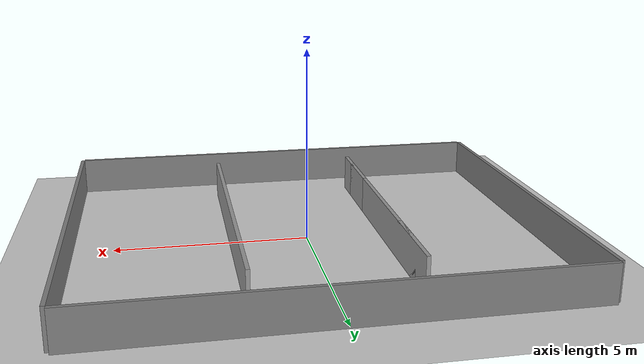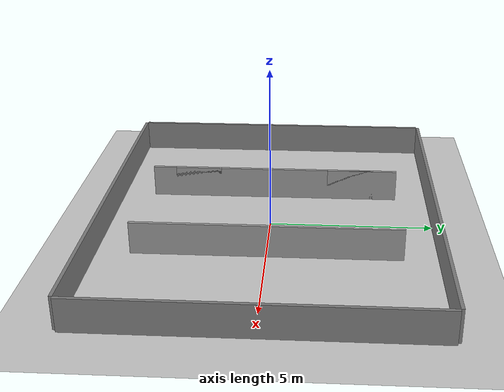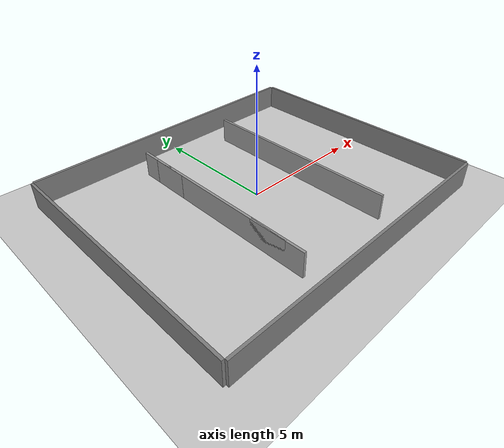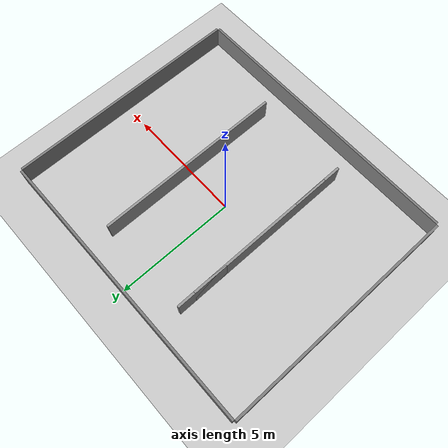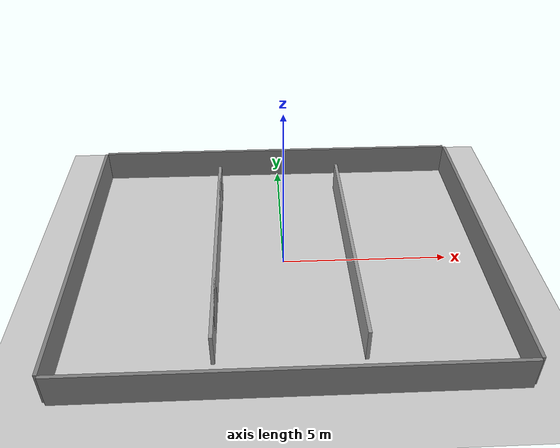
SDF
<sdf version="1.6">
 <world name="test_2d_base">
  <gravity>0 0 -9.81</gravity>
  <magnetic_field>0 0 -5e-05</magnetic_field>
  <atmosphere type="adiabatic"/>
  <physics type="ode">
   <real_time_update_rate>1000</real_time_update_rate>
   <real_time_factor>1</real_time_factor>
   <ode>
    <solver><type>quick</type><iters>50</iters><precon>1</precon></solver>
    <constraints>
     <cfm>0.00001</cfm>
     <erp>0.2</erp>
     <contact_max_correcting_vel>100</contact_max_correcting_vel>
     <contact_surface_layer>0.001</contact_surface_layer>
    </constraints>
   </ode>
  </physics>
  <scene><ambient>0.4 0.4 0.4 1</ambient><background>0.7 0.7 0.7 1</background><shadows>true</shadows></scene>
  <light name="sun" type="directional">
   <diffuse>0.8 0.8 0.8 1</diffuse>
   <specular>0.2 0.2 0.2 1</specular>
   <direction>0.3 0.2 -1</direction>
  </light>
  <include><uri>model://ground_plane</uri></include>
  <model name="wall_north">
   <static>true</static>
   <pose>0 5.05 0.5 0 0 0</pose>
   <link name="body">
    <collision name="col"><geometry><box><size>12 0.1 1</size></box></geometry></collision>
    <visual name="vis">
     <geometry><box><size>12 0.1 1</size></box></geometry>
     <material><ambient>0.5 0.5 0.5 1</ambient></material>
    </visual>
   </link>
  </model>
  <model name="wall_south">
   <static>true</static>
   <pose>0 -5.05 0.5 0 0 0</pose>
   <link name="body">
    <collision name="col"><geometry><box><size>12 0.1 1</size></box></geometry></collision>
    <visual name="vis">
     <geometry><box><size>12 0.1 1</size></box></geometry>
     <material><ambient>0.5 0.5 0.5 1</ambient></material>
    </visual>
   </link>
  </model>
  <model name="wall_east">
   <static>true</static>
   <pose>6.05 0 0.5 0 0 1.5707963</pose>
   <link name="body">
    <collision name="col"><geometry><box><size>10 0.1 1</size></box></geometry></collision>
    <visual name="vis">
     <geometry><box><size>10 0.1 1</size></box></geometry>
     <material><ambient>0.5 0.5 0.5 1</ambient></material>
    </visual>
   </link>
  </model>
  <model name="wall_west">
   <static>true</static>
   <pose>-6.05 0 0.5 0 0 1.5707963</pose>
   <link name="body">
    <collision name="col"><geometry><box><size>10 0.1 1</size></box></geometry></collision>
    <visual name="vis">
     <geometry><box><size>10 0.1 1</size></box></geometry>
     <material><ambient>0.5 0.5 0.5 1</ambient></material>
    </visual>
   </link>
  </model>
  <model name="room_divider_1">
   <static>true</static>
   <pose>-2 0 0.5 0 0 0</pose>
   <link name="body">
    <collision name="col"><geometry><box><size>0.1 8 1</size></box></geometry></collision>
    <visual name="vis">
     <geometry><box><size>0.1 8 1</size></box></geometry>
     <material><ambient>0.6 0.6 0.6 1</ambient></material>
    </visual>
   </link>
  </model>
  <model name="room_divider_2">
   <static>true</static>
   <pose>2 0 0.5 0 0 0</pose>
   <link name="body">
    <collision name="col"><geometry><box><size>0.1 8 1</size></box></geometry></collision>
    <visual name="vis">
     <geometry><box><size>0.1 8 1</size></box></geometry>
     <material><ambient>0.6 0.6 0.6 1</ambient></material>
    </visual>
   </link>
  </model>
  <model name="doorway_1_left">
   <static>true</static>
   <pose>-2 2.5 0.5 0 0 0</pose>
   <link name="body">
    <collision name="col"><geometry><box><size>0.1 1.5 1</size></box></geometry></collision>
    <visual name="vis">
     <geometry><box><size>0.1 1.5 1</size></box></geometry>
     <material><ambient>0.6 0.6 0.6 1</ambient></material>
    </visual>
   </link>
  </model>
  <model name="doorway_1_right">
   <static>true</static>
   <pose>-2 -2.5 0.5 0 0 0</pose>
   <link name="body">
    <collision name="col"><geometry><box><size>0.1 1.5 1</size></box></geometry></collision>
    <visual name="vis">
     <geometry><box><size>0.1 1.5 1</size></box></geometry>
     <material><ambient>0.6 0.6 0.6 1</ambient></material>
    </visual>
   </link>
  </model>
 </world>
</sdf>
